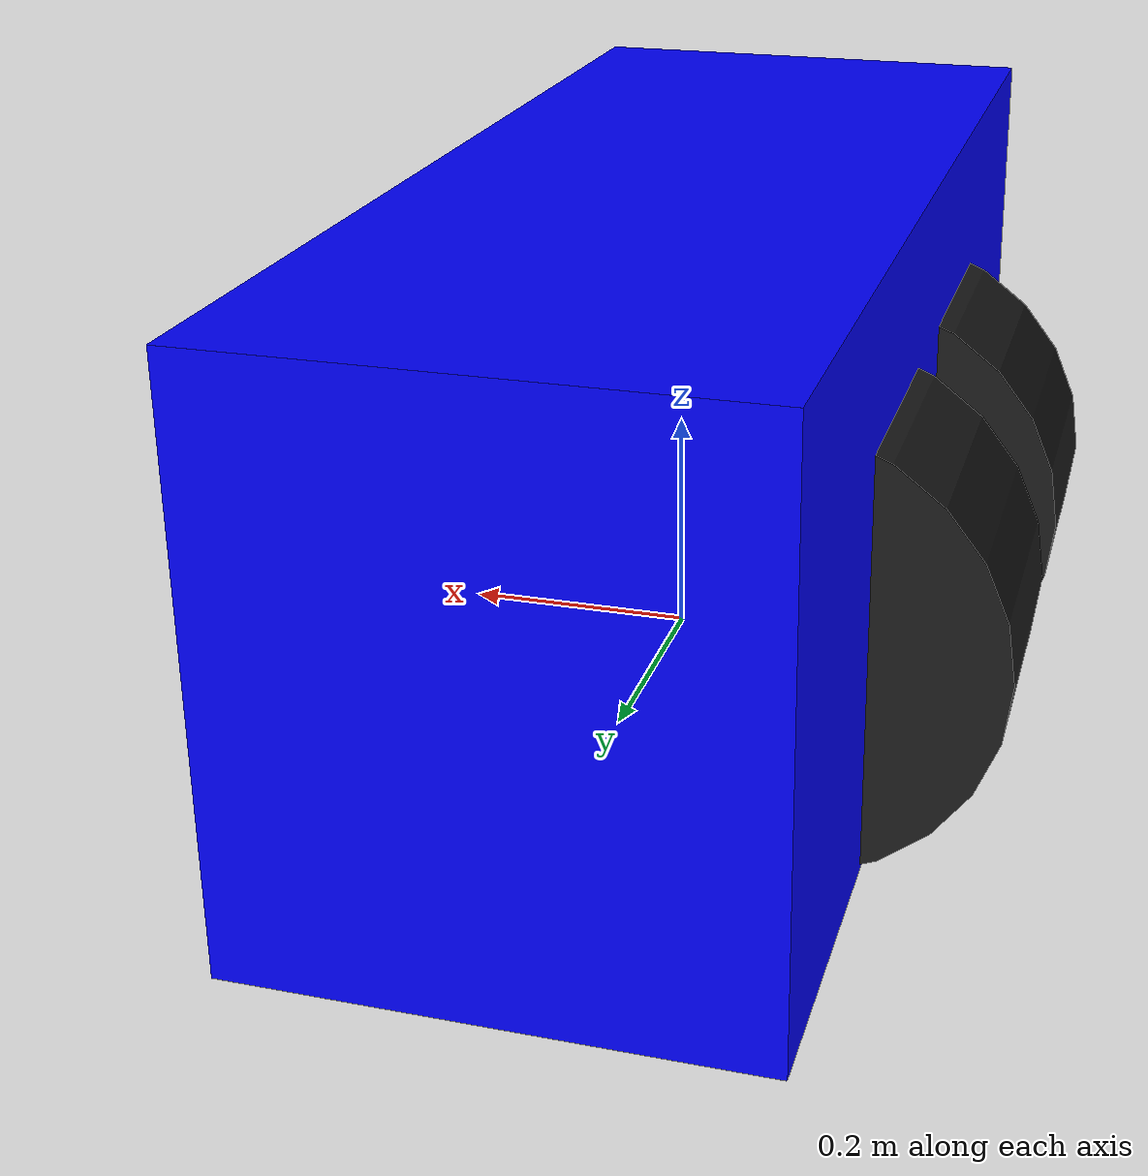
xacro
<?xml version="1.0"?>

<robot xmlns:sensor="http://playerstage.sourceforge.net/gazebo/xmlschema/#sensor"
       xmlns:controller="http://playerstage.sourceforge.net/gazebo/xmlschema/#controller"
       xmlns:interface="http://playerstage.sourceforge.net/gazebo/xmlschema/#interface"
       xmlns:xacro="http://ros.org/wiki/xacro"
name="skj">

  <!-- Chassis -->
	<link name="base_link">
		<inertial>
			<mass value="63.2"/>
			<origin xyz="0 0 0.177"/>
			<inertia ixx="0.3338" ixy="0.0" ixz="0.0"
				 iyy="0.4783" iyz="0.0"
				 izz="0.3338"/>
		</inertial>
		<visual>
			<origin xyz="0 0 0.177" rpy="0 0 0"/>
			<geometry name="skj_geom">
				<!-- mesh filename="package://p3dx_robots_description/meshes/seekurjr_meshes/body.stl"/ -->
        <box size="0.440 1.050 0.500" />
			</geometry>
			<material name="BodyBlue">
				<color rgba="0.0 0.0 1.0 1.0"/>
			</material>
		</visual>
		<collision>
			<origin xyz="0 0 0.177" rpy="0 0 0"/>
				<geometry>
					<!-- mesh filename="package://p3dx_robots_description/meshes/seekurjr_meshes/body_collision.stl"/ -->
          <box size="0.440 1.050 0.500" />
				</geometry>
		</collision>
	</link>

	<gazebo reference="base_link">
		<material value="Gazebo/Blue"/>
	</gazebo>

  <xacro:macro name="skj_wheel" params="end side endreflect sidereflect">

    <link name="skj_${end}_${side}_wheel">
      <inertial>
        <mass value="4.2"/>
        <origin xyz="0 0 0"/>
        <inertia ixx="0.012411765597" ixy="0" ixz="0"
           iyy="0.015218160428" iyz="0" izz="0.011763977943"/>
      </inertial>
      <visual>
        <origin xyz="0 0 0" rpy="-1.570795 0 0"/>
        <geometry name="skj_wheel_geom">
          <!-- mesh filename="package://p3dx_robots_description/meshes/skj_meshes/wheel.stl"/ -->
          <cylinder radius="0.2" length="0.2"/>
        </geometry>
        <material name="WheelBlack">
          <color rgba="0.117 0.117 0.117 1"/>
        </material>
      </visual>
      <collision>
        <origin xyz="0 0 0" rpy="${-3.1415927/2} 0 0"/>
        <geometry>
          <cylinder radius="0.2" length="0.2"/>
        </geometry>
      </collision>
    </link>

    <gazebo reference="skj_${end}_${side}_wheel">
      <material value="Gazebo/Black"/>
    </gazebo>

    <joint name="skj_${end}_${side}_wheel_joint" type="continuous">
      <axis xyz="0 1 0"/>
      <anchor xyz="0 0 0"/>
      <limit effort="100" velocity="100" />
      <joint_properties damping="0.7"/>
      <origin xyz="${endreflect*-0.134} ${sidereflect*0.156} 0.111" rpy="0 0 0"/>
      <parent link="base_link"/>
      <child link="skj_${end}_${side}_wheel"/>
    </joint>

    <gazebo reference="skj_${end}_${side}_wheel">
      <kp>1000000.0</kp> <!-- kp and kd for rubber -->
      <kd>100.0</kd>
      <mu1>1.0</mu1> <!-- was 10.0 -->
      <mu2>1.0</mu2>
      <!-- todo how to get these ODE params in: slip1, slip2 -->
      <!-- fdir1 0 1 0 /fdir1 --> <!-- see http://github.com/MobileRobots/amr-ros-config/issues/6 -->
      <maxVel>1.0</maxVel>
      <minDepth>0.00</minDepth>
      <material value="Gazebo/Black" />
    </gazebo>

  </xacro:macro>

  <xacro:skj_wheel end="front" side="left" endreflect="1" sidereflect="1" />
  <xacro:skj_wheel end="front" side="right" endreflect="1" sidereflect="-1" />
  <xacro:skj_wheel end="back" side="left" endreflect="-1" sidereflect="1" />
  <xacro:skj_wheel end="back" side="right" endreflect="-1" sidereflect="-1" />

  <gazebo>
    <plugin name="skid_steer_drive_controller" filename="libgazebo_ros_skid_steer_drive.so">
      <updateRate>100.0</updateRate>
      <robotNamespace>/</robotNamespace>
      <leftFrontJoint>skj_front_left_wheel_joint</leftFrontJoint>
      <rightFrontJoint>skj_front_right_wheel_joint</rightFrontJoint>
      <leftRearJoint>skj_back_left_wheel_joint</leftRearJoint>
      <rightRearJoint>skj_back_right_wheel_joint</rightRearJoint>
      <wheelSeparation>0.68</wheelSeparation>
      <wheelDiameter>0.40</wheelDiameter>
      <robotBaseFrame>base_link</robotBaseFrame>
      <torque>400</torque>
      <MaxForce>5.0</MaxForce>
      <commandTopic>cmd_vel</commandTopic>
      <odometryTopic>odom</odometryTopic>
      <odometryFrame>odom</odometryFrame>
      <broadcastTF>1</broadcastTF>
    </plugin>
  </gazebo>

</robot>
